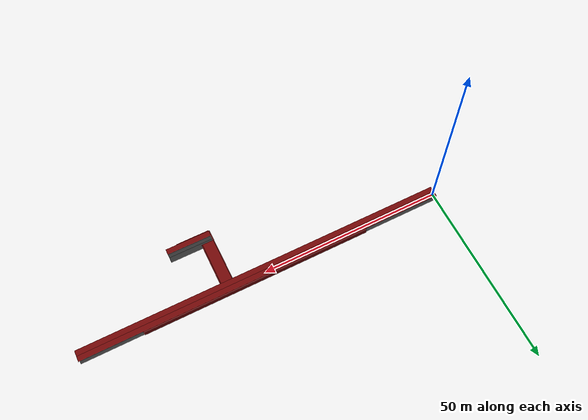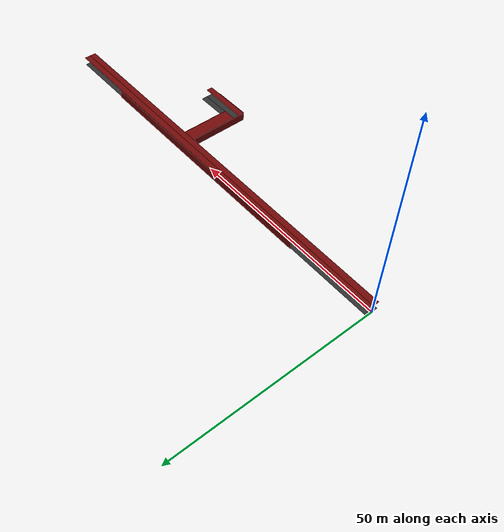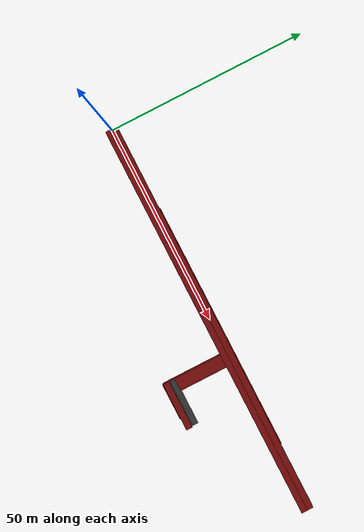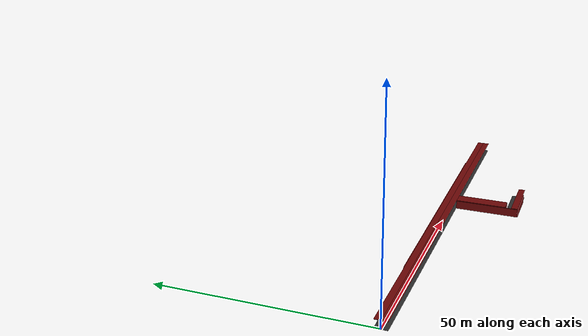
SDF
<sdf version="1.6">
 <world name="connected_branch_corridor_world">
  <include><uri>model://sun</uri></include>
  <model name="corridor_floor_02">
   <static>true</static>
   <pose>64.5 -15.75 0.01 0 0 0</pose>
   <link name="link">
    <visual name="visual">
     <geometry><box><size>12 1.5 0.02</size></box></geometry>
     <material><ambient>0.11 0.11 0.11 1</ambient><diffuse>0.18 0.18 0.18 1</diffuse></material>
    </visual>
   </link>
  </model>
  <model name="corridor_ceiling_02">
   <static>true</static>
   <pose>64.5 -15.75 2.05 0 0 0</pose>
   <link name="link">
    <collision name="collision"><geometry><box><size>12 1.5 0.1</size></box></geometry></collision>
    <visual name="visual">
     <geometry><box><size>12 1.5 0.1</size></box></geometry>
     <material><ambient>0.25 0.015 0.015 1</ambient><diffuse>0.43 0.025 0.025 1</diffuse></material>
    </visual>
   </link>
  </model>
  <model name="corridor_floor_03">
   <static>true</static>
   <pose>64.5 -14.25 0.01 0 0 0</pose>
   <link name="link">
    <visual name="visual">
     <geometry><box><size>12 1.5 0.02</size></box></geometry>
     <material><ambient>0.11 0.11 0.11 1</ambient><diffuse>0.18 0.18 0.18 1</diffuse></material>
    </visual>
   </link>
  </model>
  <model name="corridor_floor_04">
   <static>true</static>
   <pose>60 -7.5 0.01 0 0 0</pose>
   <link name="link">
    <visual name="visual">
     <geometry><box><size>3 12 0.02</size></box></geometry>
     <material><ambient>0.11 0.11 0.11 1</ambient><diffuse>0.18 0.18 0.18 1</diffuse></material>
    </visual>
   </link>
  </model>
  <model name="corridor_ceiling_04">
   <static>true</static>
   <pose>60 -7.5 2.05 0 0 0</pose>
   <link name="link">
    <collision name="collision"><geometry><box><size>3 12 0.1</size></box></geometry></collision>
    <visual name="visual">
     <geometry><box><size>3 12 0.1</size></box></geometry>
     <material><ambient>0.25 0.015 0.015 1</ambient><diffuse>0.43 0.025 0.025 1</diffuse></material>
    </visual>
   </link>
  </model>
  <model name="corridor_floor_05">
   <static>true</static>
   <pose>50 -0.75 0.01 0 0 0</pose>
   <link name="link">
    <visual name="visual">
     <geometry><box><size>100 1.5 0.02</size></box></geometry>
     <material><ambient>0.11 0.11 0.11 1</ambient><diffuse>0.18 0.18 0.18 1</diffuse></material>
    </visual>
   </link>
  </model>
  <model name="corridor_ceiling_05">
   <static>true</static>
   <pose>50 -0.75 2.05 0 0 0</pose>
   <link name="link">
    <collision name="collision"><geometry><box><size>100 1.5 0.1</size></box></geometry></collision>
    <visual name="visual">
     <geometry><box><size>100 1.5 0.1</size></box></geometry>
     <material><ambient>0.25 0.015 0.015 1</ambient><diffuse>0.43 0.025 0.025 1</diffuse></material>
    </visual>
   </link>
  </model>
  <model name="corridor_floor_06">
   <static>true</static>
   <pose>50 0.75 0.01 0 0 0</pose>
   <link name="link">
    <visual name="visual">
     <geometry><box><size>100 1.5 0.02</size></box></geometry>
     <material><ambient>0.11 0.11 0.11 1</ambient><diffuse>0.18 0.18 0.18 1</diffuse></material>
    </visual>
   </link>
  </model>
  <model name="corridor_ceiling_06">
   <static>true</static>
   <pose>50 0.75 2.05 0 0 0</pose>
   <link name="link">
    <collision name="collision"><geometry><box><size>100 1.5 0.1</size></box></geometry></collision>
    <visual name="visual">
     <geometry><box><size>100 1.5 0.1</size></box></geometry>
     <material><ambient>0.25 0.015 0.015 1</ambient><diffuse>0.43 0.025 0.025 1</diffuse></material>
    </visual>
   </link>
  </model>
  <model name="wall_01_south">
   <static>true</static>
   <pose>63 -16.6 1 0 0 0</pose>
   <link name="link">
    <collision name="collision"><geometry><box><size>9 0.2 2</size></box></geometry></collision>
    <visual name="visual">
     <geometry><box><size>9 0.2 2</size></box></geometry>
     <material><ambient>0.25 0.015 0.015 1</ambient><diffuse>0.43 0.025 0.025 1</diffuse></material>
    </visual>
   </link>
  </model>
  <model name="wall_06_north">
   <static>true</static>
   <pose>52.5 1.6 1 0 0 0</pose>
   <link name="link">
    <collision name="collision"><geometry><box><size>62 0.2 2</size></box></geometry></collision>
    <visual name="visual">
     <geometry><box><size>62 0.2 2</size></box></geometry>
     <material><ambient>0.25 0.015 0.015 1</ambient><diffuse>0.43 0.025 0.025 1</diffuse></material>
    </visual>
   </link>
  </model>
  <model name="wall_12_west">
   <static>true</static>
   <pose>58.4 -9 1 0 0 0</pose>
   <link name="link">
    <collision name="collision"><geometry><box><size>0.2 15 2</size></box></geometry></collision>
    <visual name="visual">
     <geometry><box><size>0.2 15 2</size></box></geometry>
     <material><ambient>0.25 0.015 0.015 1</ambient><diffuse>0.43 0.025 0.025 1</diffuse></material>
    </visual>
   </link>
  </model>
  <model name="wall_13_east">
   <static>true</static>
   <pose>61.6 -7.5 1 0 0 0</pose>
   <link name="link">
    <collision name="collision"><geometry><box><size>0.2 12 2</size></box></geometry></collision>
    <visual name="visual">
     <geometry><box><size>0.2 12 2</size></box></geometry>
     <material><ambient>0.25 0.015 0.015 1</ambient><diffuse>0.43 0.025 0.025 1</diffuse></material>
    </visual>
   </link>
  </model>
  <model name="feature_crate_right_turn_01">
   <static>true</static>
   <pose>59.15 -8.80 0.20 0 0 -0.25</pose>
   <link name="link">
    <collision name="collision"><geometry><box><size>0.50 0.60 0.40</size></box></geometry></collision>
    <visual name="visual">
     <geometry><box><size>0.50 0.60 0.40</size></box></geometry>
     <material><ambient>0.25 0.24 0.20 1</ambient><diffuse>0.42 0.40 0.34 1</diffuse></material>
    </visual>
   </link>
  </model>
  <model name="feature_cable_right_branch_y_01">
   <static>true</static>
   <pose>60.95 -7.50 1.82 1.5708 0 0</pose>
   <link name="link">
    <collision name="collision">
     <geometry><cylinder><radius>0.025</radius><length>10.8</length></cylinder></geometry>
    </collision>
    <visual name="visual">
     <geometry><cylinder><radius>0.025</radius><length>10.8</length></cylinder></geometry>
     <material><ambient>0.03 0.025 0.02 1</ambient><diffuse>0.06 0.05 0.04 1</diffuse></material>
    </visual>
   </link>
  </model>
  <model name="feature_crossbeam_right_branch_01">
   <static>true</static>
   <pose>60 -8.5 1.88 0 0 0</pose>
   <link name="link">
    <collision name="collision"><geometry><box><size>2.65 0.16 0.12</size></box></geometry></collision>
    <visual name="visual">
     <geometry><box><size>2.65 0.16 0.12</size></box></geometry>
     <material><ambient>0.25 0.24 0.26 1</ambient><diffuse>0.38 0.37 0.40 1</diffuse></material>
    </visual>
   </link>
  </model>
  <model name="feature_wall_panel_right_west_01">
   <static>true</static>
   <pose>58.54 -7.0 1.00 0 0 0</pose>
   <link name="link">
    <collision name="collision"><geometry><box><size>0.08 2.0 0.65</size></box></geometry></collision>
    <visual name="visual">
     <geometry><box><size>0.08 2.0 0.65</size></box></geometry>
     <material><ambient>0.34 0.31 0.30 1</ambient><diffuse>0.48 0.44 0.42 1</diffuse></material>
    </visual>
   </link>
  </model>
  <model name="feature_service_box_main_01">
   <static>true</static>
   <pose>55.0 1.44 1.25 0 0 0</pose>
   <link name="link">
    <collision name="collision"><geometry><box><size>0.55 0.10 0.42</size></box></geometry></collision>
    <visual name="visual">
     <geometry><box><size>0.55 0.10 0.42</size></box></geometry>
     <material><ambient>0.10 0.16 0.35 1</ambient><diffuse>0.15 0.25 0.60 1</diffuse></material>
    </visual>
   </link>
  </model>
 </world>
</sdf>
